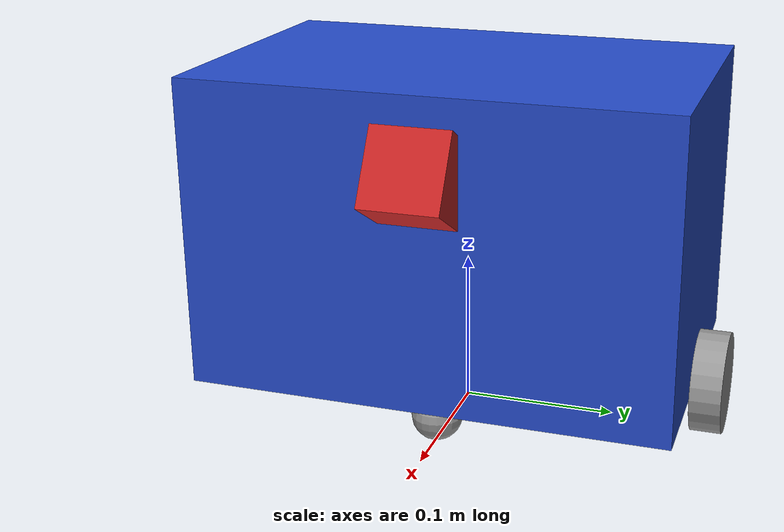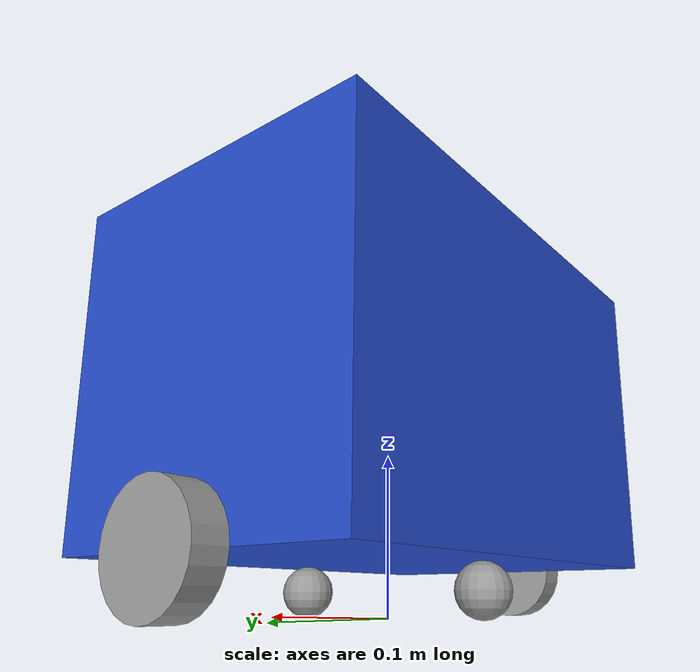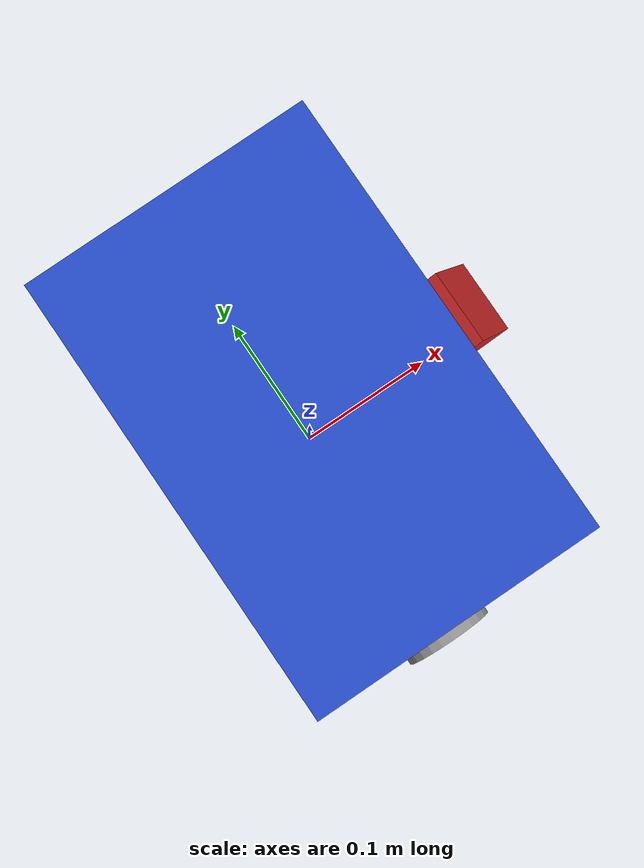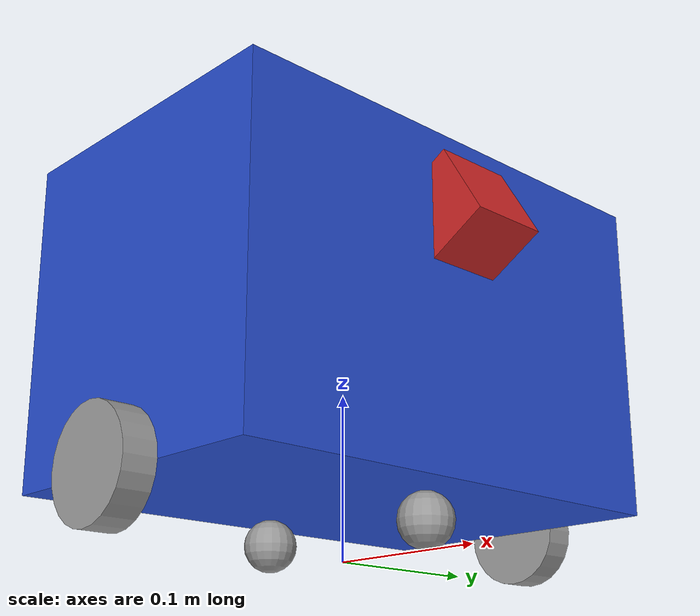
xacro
<?xml version="1.0" ?>
<robot xmlns:xacro="http://www.ros.org/wiki/xacro">
  <xacro:include filename="inertial_macros.xacro" />
  <xacro:property name="base_length" value="0.20" />
  <xacro:property name="base_width" value="0.31" />
  <xacro:property name="base_height" value="0.20" />
  <xacro:property name="base_mass" value="3.0" />

  <xacro:property name="wheel_mass" value="0.3" />
  <xacro:property name="wheel_radius" value="0.033" />
  <xacro:property name="wheel_length" value="0.02" />

  <xacro:property name="caster_wheel_mass" value="0.1" />
  <xacro:property name="caster_wheel_radius" value="${wheel_radius / 2.0}" />

  <!-- BASE FOOTPRINT LINK -->
  <link name="base_footprint" />

  <!-- BASE LINK -->
  <link name="base_link">
    <visual>
      <geometry>
        <box size="${base_length} ${base_width} ${base_height}" />
      </geometry>
      <origin xyz="0 0 ${base_height / 2.0}" rpy="0 0 0" />
      <material name="blue" />
    </visual>

    <collision>
      <geometry>
        <box size="${base_length} ${base_width} ${base_height}" />
      </geometry>
      <origin xyz="0 0 ${base_height / 2.0}" rpy="0 0 0" />
    </collision>

    <inertial>
      <origin xyz="0 0 ${base_height / 2.0}" rpy="0 0 0" />
      <mass value="${base_mass}" />
      <inertia
                ixx="${base_mass / 12.0 * (base_width*base_width + base_height*base_height)}"
                ixy="0.0"
                ixz="0.0"
                iyy="${base_mass / 12.0 * (base_length*base_length + base_height*base_height)}"
                iyz="0.0"
                izz="${base_mass / 12.0 * (base_width*base_width + base_length*base_length)}"
            />
    </inertial>

  </link>

  <!-- WHEEL MACRO -->
  <xacro:macro name="wheel_link" params="prefix">
    <link name="${prefix}_wheel_link">
      <visual>
        <geometry>
          <cylinder radius="${wheel_radius}" length="${wheel_length}" />
        </geometry>
        <origin xyz="0 0 0" rpy="${pi / 2.0} 0 0" />
        <material name="grey" />
      </visual>

      <collision>
        <geometry>
          <cylinder radius="${wheel_radius}" length="${wheel_length}" />
        </geometry>
        <origin xyz="0 0 0" rpy="${pi / 2.0} 0 0" />
      </collision>

      <inertial>
        <origin xyz="0 0 0" rpy="${pi/2} 0 0" />
        <mass value="${wheel_mass}" />
        <inertia
                    ixx="${wheel_mass / 12.0 * (3*wheel_radius*wheel_radius + wheel_length*wheel_length)}"
                    ixy="0.0"
                    ixz="0.0"
                    iyy="${wheel_mass / 12.0 * (3*wheel_radius*wheel_radius + wheel_length*wheel_length)}"
                    iyz="0.0"
                    izz="${wheel_mass / 2.0 * wheel_radius*wheel_radius}"
                />
      </inertial>
    </link>
  </xacro:macro>

  <xacro:wheel_link prefix="right" />
  <xacro:wheel_link prefix="left" />

  <!-- FRONT CASTER WHEEL -->
  <link name="front_caster_wheel_link">
    <visual>
      <geometry>
        <sphere radius="${caster_wheel_radius}" />
      </geometry>
      <origin xyz="0 0 0" rpy="0 0 0" />
      <material name="grey" />
    </visual>

    <collision>
      <geometry>
        <sphere radius="${caster_wheel_radius}" />
      </geometry>
      <origin xyz="0 0 0" rpy="0 0 0" />
    </collision>

    <inertial>
      <origin xyz="0 0 0" rpy="0 0 0" />
      <mass value="${caster_wheel_mass}" />
      <inertia
                ixx="${caster_wheel_mass * 0.4 * (caster_wheel_radius * caster_wheel_radius)}"
                ixy="0.0"
                ixz="0.0"
                iyy="${caster_wheel_mass * 0.4 * (caster_wheel_radius * caster_wheel_radius)}"
                iyz="0.0"
                izz="${caster_wheel_mass * 0.4 * (caster_wheel_radius * caster_wheel_radius)}"
            />
    </inertial>
  </link>

  <!-- REAR CASTER WHEEL -->
  <link name="rear_caster_wheel_link">
    <visual>
      <geometry>
        <sphere radius="${caster_wheel_radius}" />
      </geometry>
      <origin xyz="0 0 0" rpy="0 0 0" />
      <material name="grey" />
    </visual>

    <collision>
      <geometry>
        <sphere radius="${caster_wheel_radius}" />
      </geometry>
      <origin xyz="0 0 0" rpy="0 0 0" />
    </collision>

    <inertial>
      <origin xyz="0 0 0" rpy="0 0 0" />
      <mass value="${caster_wheel_mass}" />
      <inertia
                ixx="${caster_wheel_mass * 0.4 * (caster_wheel_radius * caster_wheel_radius)}"
                ixy="0.0"
                ixz="0.0"
                iyy="${caster_wheel_mass * 0.4 * (caster_wheel_radius * caster_wheel_radius)}"
                iyz="0.0"
                izz="${caster_wheel_mass * 0.4 * (caster_wheel_radius * caster_wheel_radius)}"
            />
    </inertial>
  </link>

  <!-- IMU LINK -->

  <!-- LIDAR LINK -->

  <!-- CAMERA LINK -->
  <link name="camera_link">
    <visual>
      <geometry>
        <box size="0.05 0.05 0.05" />
      </geometry>
      <material name="red" />
    </visual>
    <collision>
      <geometry>
        <box size="0.05 0.05 0.05" />
      </geometry>
    </collision>
  </link>

  <!-- JOINTS -->
  <joint name="base_joint" type="fixed">
    <parent link="base_footprint" />
    <child link="base_link" />
    <origin xyz="0 0 ${wheel_radius}" rpy="0 0 0" />
  </joint>

  <joint name="right_wheel_joint" type="continuous">
    <parent link="base_link" />
    <child link="right_wheel_link" />
    <origin xyz="0 ${-(base_width + wheel_length) / 2.0} 0" rpy="0 0 0" />
    <axis xyz="0 1 0" />
  </joint>

  <joint name="left_wheel_joint" type="continuous">
    <parent link="base_link" />
    <child link="left_wheel_link" />
    <origin xyz="0 ${(base_width + wheel_length) / 2.0} 0" rpy="0 0 0" />
    <axis xyz="0 1 0" />
  </joint>

  <joint name="front_caster_wheel_joint" type="fixed">
    <parent link="base_link" />
    <child link="front_caster_wheel_link" />
    <origin xyz="${base_length / 3.0} 0 ${-caster_wheel_radius}" rpy="0 0 0" />
  </joint>

  <joint name="rear_caster_wheel_joint" type="fixed">
    <parent link="base_link" />
    <child link="rear_caster_wheel_link" />
    <origin xyz="${-base_length / 3.0} 0 ${-caster_wheel_radius}" rpy="0 0 0" />
  </joint>

  <joint name="camera_joint" type="fixed">
    <parent link="base_link" />
    <child link="camera_link" />
    <!-- Positioned near the front edge of the top plate, facing forward -->
    <origin xyz="${base_length/2} 0 ${base_height - 0.05}" rpy="0 1.047 0" />
  </joint>

</robot>
